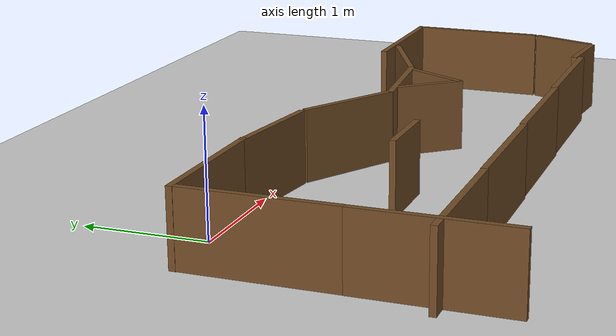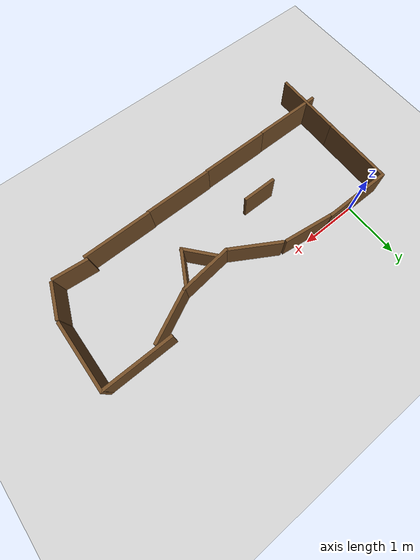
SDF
<?xml version="1.0" ?>
<sdf version='1.7'>
  <world name='default'>
    <gravity>0 0 -9.8</gravity>
    <magnetic_field>6e-06 2.3e-05 -4.2e-05</magnetic_field>
    <atmosphere type='adiabatic'/>
    <physics type='ode'>
      <max_step_size>0.001</max_step_size>
      <real_time_factor>1</real_time_factor>
      <real_time_update_rate>1000</real_time_update_rate>
    </physics>
    <scene>
      <ambient>0.4 0.4 0.4 1</ambient>
      <background>0.7 0.7 0.7 1</background>
      <shadows>true</shadows>
    </scene>
    <audio>
      <device>default</device>
    </audio>
    <wind/>
    <spherical_coordinates>
      <surface_model>EARTH_WGS84</surface_model>
      <latitude_deg>0</latitude_deg>
      <longitude_deg>0</longitude_deg>
      <elevation>0</elevation>
      <heading_deg>0</heading_deg>
    </spherical_coordinates>
    <gui fullscreen='false'>
      <camera name='user_camera'>
        <pose>5 -5 2 0 0.275643 2.35619</pose>
        <view_controller>orbit</view_controller>
        <projection_type>perspective</projection_type>
      </camera>
    </gui>
    <model name='ground_plane'>
      <static>true</static>
      <link name='link'>
        <collision name='collision'>
          <geometry>
            <plane>
              <normal>0 0 1</normal>
              <size>100 100</size>
            </plane>
          </geometry>
          <surface>
            <contact>
              <collide_bitmask>65535</collide_bitmask>
              <ode/>
            </contact>
            <friction>
              <ode>
                <mu>100</mu>
                <mu2>50</mu2>
              </ode>
              <torsional>
                <ode/>
              </torsional>
            </friction>
            <bounce/>
          </surface>
          <max_contacts>10</max_contacts>
        </collision>
        <visual name='visual'>
          <cast_shadows>false</cast_shadows>
          <geometry>
            <plane>
              <normal>0 0 1</normal>
              <size>100 100</size>
            </plane>
          </geometry>
          <material>
            <script>
              <uri>file://media/materials/scripts/gazebo.material</uri>
              <name>Gazebo/Grey</name>
            </script>
          </material>
        </visual>
        <self_collide>false</self_collide>
        <enable_wind>false</enable_wind>
        <kinematic>false</kinematic>
        <pose>0 0 0 0 -0 0</pose>
        <inertial>
          <pose>0 0 0 0 -0 0</pose>
          <mass>1</mass>
          <inertia>
            <ixx>1</ixx>
            <ixy>0</ixy>
            <ixz>0</ixz>
            <iyy>1</iyy>
            <iyz>0</iyz>
            <izz>1</izz>
          </inertia>
        </inertial>
      </link>
      <pose>0 0 0 0 -0 0</pose>
      <self_collide>false</self_collide>
    </model>
    <model name='wall120cm'>
      <static>true</static>
      <link name='link'>
        <collision name='collision'>
          <geometry>
            <box>
              <size>1.2 0.05 0.6</size>
            </box>
          </geometry>
          <max_contacts>10</max_contacts>
          <surface>
            <contact>
              <ode/>
            </contact>
            <bounce/>
            <friction>
              <torsional>
                <ode/>
              </torsional>
              <ode/>
            </friction>
          </surface>
        </collision>
        <visual name='visual'>
          <geometry>
            <box>
              <size>1.2 0.05 0.6</size>
            </box>
          </geometry>
          <material>
            <ambient>0.45 0.3 0.15 1</ambient>
            <diffuse>0.45 0.3 0.15 1</diffuse>
            <specular>0.05 0.05 0.05 1</specular>
          </material>
        </visual>
        <self_collide>false</self_collide>
        <enable_wind>false</enable_wind>
        <kinematic>false</kinematic>
        <pose>0 0 0 0 -0 0</pose>
        <inertial>
          <pose>0 0 0 0 -0 0</pose>
          <mass>1</mass>
          <inertia>
            <ixx>1</ixx>
            <ixy>0</ixy>
            <ixz>0</ixz>
            <iyy>1</iyy>
            <iyz>0</iyz>
            <izz>1</izz>
          </inertia>
        </inertial>
      </link>
      <pose>0.025868 -0.005277 0.3 0 -0 0</pose>
      <self_collide>false</self_collide>
    </model>
    <model name='wall120cm_0'>
      <static>true</static>
      <link name='link'>
        <collision name='collision'>
          <geometry>
            <box>
              <size>1.2 0.05 0.6</size>
            </box>
          </geometry>
          <max_contacts>10</max_contacts>
          <surface>
            <contact>
              <ode/>
            </contact>
            <bounce/>
            <friction>
              <torsional>
                <ode/>
              </torsional>
              <ode/>
            </friction>
          </surface>
        </collision>
        <visual name='visual'>
          <geometry>
            <box>
              <size>1.2 0.05 0.6</size>
            </box>
          </geometry>
          <material>
            <ambient>0.45 0.3 0.15 1</ambient>
            <diffuse>0.45 0.3 0.15 1</diffuse>
            <specular>0.05 0.05 0.05 1</specular>
          </material>
        </visual>
        <self_collide>false</self_collide>
        <enable_wind>false</enable_wind>
        <kinematic>false</kinematic>
        <pose>0 0 0 0 -0 0</pose>
        <inertial>
          <pose>0 0 0 0 -0 0</pose>
          <mass>1</mass>
          <inertia>
            <ixx>1</ixx>
            <ixy>0</ixy>
            <ixz>0</ixz>
            <iyy>1</iyy>
            <iyz>0</iyz>
            <izz>1</izz>
          </inertia>
        </inertial>
      </link>
      <pose>-0.54837 -0.623096 0.3 0 0 -1.57402</pose>
      <self_collide>false</self_collide>
    </model>
    <model name='wall90cm'>
      <static>true</static>
      <pose>1.01848 -0.064701 0.3 0 0 -0.130317</pose>
      <link name='link'>
        <collision name='collision'>
          <geometry>
            <box>
              <size>0.9 0.05 0.6</size>
            </box>
          </geometry>
          <max_contacts>10</max_contacts>
          <surface>
            <contact>
              <ode/>
            </contact>
            <bounce/>
            <friction>
              <torsional>
                <ode/>
              </torsional>
              <ode/>
            </friction>
          </surface>
        </collision>
        <visual name='visual'>
          <geometry>
            <box>
              <size>0.9 0.05 0.6</size>
            </box>
          </geometry>
          <material>
            <ambient>0.45 0.3 0.15 1</ambient>
            <diffuse>0.45 0.3 0.15 1</diffuse>
            <specular>0.05 0.05 0.05 1</specular>
          </material>
        </visual>
        <self_collide>false</self_collide>
        <enable_wind>false</enable_wind>
        <kinematic>false</kinematic>
        <pose>0 0 0 0 -0 0</pose>
        <inertial>
          <pose>0 0 0 0 -0 0</pose>
          <mass>1</mass>
          <inertia>
            <ixx>1</ixx>
            <ixy>0</ixy>
            <ixz>0</ixz>
            <iyy>1</iyy>
            <iyz>0</iyz>
            <izz>1</izz>
          </inertia>
        </inertial>
      </link>
      <self_collide>false</self_collide>
    </model>
    <model name='wall90cm_0'>
      <static>true</static>
      <pose>1.88 -0.36 0.3 0 0 -0.53</pose>
      <link name='link'>
        <collision name='collision'>
          <geometry>
            <box>
              <size>0.9 0.05 0.6</size>
            </box>
          </geometry>
          <max_contacts>10</max_contacts>
          <surface>
            <contact>
              <ode/>
            </contact>
            <bounce/>
            <friction>
              <torsional>
                <ode/>
              </torsional>
              <ode/>
            </friction>
          </surface>
        </collision>
        <visual name='visual'>
          <geometry>
            <box>
              <size>0.9 0.05 0.6</size>
            </box>
          </geometry>
          <material>
            <ambient>0.45 0.3 0.15 1</ambient>
            <diffuse>0.45 0.3 0.15 1</diffuse>
            <specular>0.05 0.05 0.05 1</specular>
          </material>
        </visual>
        <self_collide>false</self_collide>
        <enable_wind>false</enable_wind>
        <kinematic>false</kinematic>
        <pose>0 0 0 0 -0 0</pose>
        <inertial>
          <pose>0 0 0 0 -0 0</pose>
          <mass>1</mass>
          <inertia>
            <ixx>1</ixx>
            <ixy>0</ixy>
            <ixz>0</ixz>
            <iyy>1</iyy>
            <iyz>0</iyz>
            <izz>1</izz>
          </inertia>
        </inertial>
      </link>
      <self_collide>false</self_collide>
    </model>
    <model name='wall90cm_0_1'>
      <static>true</static>
      <pose>2.70059 -0.54056 0.3 0 -0 0.108521</pose>
      <link name='link'>
        <collision name='collision'>
          <geometry>
            <box>
              <size>0.9 0.05 0.6</size>
            </box>
          </geometry>
          <max_contacts>10</max_contacts>
          <surface>
            <contact>
              <ode/>
            </contact>
            <bounce/>
            <friction>
              <torsional>
                <ode/>
              </torsional>
              <ode/>
            </friction>
          </surface>
        </collision>
        <visual name='visual'>
          <geometry>
            <box>
              <size>0.9 0.05 0.6</size>
            </box>
          </geometry>
          <material>
            <ambient>0.45 0.3 0.15 1</ambient>
            <diffuse>0.45 0.3 0.15 1</diffuse>
            <specular>0.05 0.05 0.05 1</specular>
          </material>
        </visual>
        <self_collide>false</self_collide>
        <enable_wind>false</enable_wind>
        <kinematic>false</kinematic>
        <pose>0 0 0 0 -0 0</pose>
        <inertial>
          <pose>0 0 0 0 -0 0</pose>
          <mass>1</mass>
          <inertia>
            <ixx>1</ixx>
            <ixy>0</ixy>
            <ixz>0</ixz>
            <iyy>1</iyy>
            <iyz>0</iyz>
            <izz>1</izz>
          </inertia>
        </inertial>
      </link>
      <self_collide>false</self_collide>
    </model>
    <model name='wall90cm_0_1_1'>
      <static>true</static>
      <pose>3.51692 -0.303152 0.3 0 -0 0.453864</pose>
      <link name='link'>
        <collision name='collision'>
          <geometry>
            <box>
              <size>0.9 0.05 0.6</size>
            </box>
          </geometry>
          <max_contacts>10</max_contacts>
          <surface>
            <contact>
              <ode/>
            </contact>
            <bounce/>
            <friction>
              <torsional>
                <ode/>
              </torsional>
              <ode/>
            </friction>
          </surface>
        </collision>
        <visual name='visual'>
          <geometry>
            <box>
              <size>0.9 0.05 0.6</size>
            </box>
          </geometry>
          <material>
            <ambient>0.45 0.3 0.15 1</ambient>
            <diffuse>0.45 0.3 0.15 1</diffuse>
            <specular>0.05 0.05 0.05 1</specular>
          </material>
        </visual>
        <self_collide>false</self_collide>
        <enable_wind>false</enable_wind>
        <kinematic>false</kinematic>
        <pose>0 0 0 0 -0 0</pose>
        <inertial>
          <pose>0 0 0 0 -0 0</pose>
          <mass>1</mass>
          <inertia>
            <ixx>1</ixx>
            <ixy>0</ixy>
            <ixz>0</ixz>
            <iyy>1</iyy>
            <iyz>0</iyz>
            <izz>1</izz>
          </inertia>
        </inertial>
      </link>
      <self_collide>false</self_collide>
    </model>
    <model name='wall120cm_1'>
      <static>true</static>
      <link name='link'>
        <collision name='collision'>
          <geometry>
            <box>
              <size>1.2 0.05 0.6</size>
            </box>
          </geometry>
          <max_contacts>10</max_contacts>
          <surface>
            <contact>
              <ode/>
            </contact>
            <bounce/>
            <friction>
              <torsional>
                <ode/>
              </torsional>
              <ode/>
            </friction>
          </surface>
        </collision>
        <visual name='visual'>
          <geometry>
            <box>
              <size>1.2 0.05 0.6</size>
            </box>
          </geometry>
          <material>
            <ambient>0.45 0.3 0.15 1</ambient>
            <diffuse>0.45 0.3 0.15 1</diffuse>
            <specular>0.05 0.05 0.05 1</specular>
          </material>
        </visual>
        <self_collide>false</self_collide>
        <enable_wind>false</enable_wind>
        <kinematic>false</kinematic>
        <pose>0 0 0 0 -0 0</pose>
        <inertial>
          <pose>0 0 0 0 -0 0</pose>
          <mass>1</mass>
          <inertia>
            <ixx>1</ixx>
            <ixy>0</ixy>
            <ixz>0</ixz>
            <iyy>1</iyy>
            <iyz>0</iyz>
            <izz>1</izz>
          </inertia>
        </inertial>
      </link>
      <pose>4.24863 -0.05808 0.3 0 -0 0</pose>
      <self_collide>false</self_collide>
    </model>
    <model name='wall120cm_0_1'>
      <static>true</static>
      <link name='link'>
        <collision name='collision'>
          <geometry>
            <box>
              <size>1.2 0.05 0.6</size>
            </box>
          </geometry>
          <max_contacts>10</max_contacts>
          <surface>
            <contact>
              <ode/>
            </contact>
            <bounce/>
            <friction>
              <torsional>
                <ode/>
              </torsional>
              <ode/>
            </friction>
          </surface>
        </collision>
        <visual name='visual'>
          <geometry>
            <box>
              <size>1.2 0.05 0.6</size>
            </box>
          </geometry>
          <material>
            <ambient>0.45 0.3 0.15 1</ambient>
            <diffuse>0.45 0.3 0.15 1</diffuse>
            <specular>0.05 0.05 0.05 1</specular>
          </material>
        </visual>
        <self_collide>false</self_collide>
        <enable_wind>false</enable_wind>
        <kinematic>false</kinematic>
        <pose>0 0 0 0 -0 0</pose>
        <inertial>
          <pose>0 0 0 0 -0 0</pose>
          <mass>1</mass>
          <inertia>
            <ixx>1</ixx>
            <ixy>0</ixy>
            <ixz>0</ixz>
            <iyy>1</iyy>
            <iyz>0</iyz>
            <izz>1</izz>
          </inertia>
        </inertial>
      </link>
      <pose>4.82576 -0.63114 0.3 0 0 -1.57402</pose>
      <self_collide>false</self_collide>
    </model>
    <model name='wall60cm_1'>
      <static>true</static>
      <pose>4.71252 -1.53217 0.3 0 -0 1.20175</pose>
      <link name='link'>
        <collision name='collision'>
          <geometry>
            <box>
              <size>0.6 0.05 0.6</size>
            </box>
          </geometry>
          <max_contacts>10</max_contacts>
          <surface>
            <contact>
              <ode/>
            </contact>
            <bounce/>
            <friction>
              <torsional>
                <ode/>
              </torsional>
              <ode/>
            </friction>
          </surface>
        </collision>
        <visual name='visual'>
          <geometry>
            <box>
              <size>0.6 0.05 0.6</size>
            </box>
          </geometry>
          <material>
            <ambient>0.45 0.3 0.15 1</ambient>
            <diffuse>0.45 0.3 0.15 1</diffuse>
            <specular>0.05 0.05 0.05 1</specular>
          </material>
        </visual>
        <self_collide>false</self_collide>
        <enable_wind>false</enable_wind>
        <kinematic>false</kinematic>
      </link>
      <self_collide>false</self_collide>
    </model>
    <model name='wall60cm_1_1'>
      <static>true</static>
      <pose>4.29322 -1.79983 0.3 0 0 -0.094563</pose>
      <link name='link'>
        <collision name='collision'>
          <geometry>
            <box>
              <size>0.6 0.05 0.6</size>
            </box>
          </geometry>
          <max_contacts>10</max_contacts>
          <surface>
            <contact>
              <ode/>
            </contact>
            <bounce/>
            <friction>
              <torsional>
                <ode/>
              </torsional>
              <ode/>
            </friction>
          </surface>
        </collision>
        <visual name='visual'>
          <geometry>
            <box>
              <size>0.6 0.05 0.6</size>
            </box>
          </geometry>
          <material>
            <ambient>0.45 0.3 0.15 1</ambient>
            <diffuse>0.45 0.3 0.15 1</diffuse>
            <specular>0.05 0.05 0.05 1</specular>
          </material>
        </visual>
        <self_collide>false</self_collide>
        <enable_wind>false</enable_wind>
        <kinematic>false</kinematic>
      </link>
      <self_collide>false</self_collide>
    </model>
    <model name='wall120cm_2'>
      <static>true</static>
      <link name='link'>
        <collision name='collision'>
          <geometry>
            <box>
              <size>1.2 0.05 0.6</size>
            </box>
          </geometry>
          <max_contacts>10</max_contacts>
          <surface>
            <contact>
              <ode/>
            </contact>
            <bounce/>
            <friction>
              <torsional>
                <ode/>
              </torsional>
              <ode/>
            </friction>
          </surface>
        </collision>
        <visual name='visual'>
          <geometry>
            <box>
              <size>1.2 0.05 0.6</size>
            </box>
          </geometry>
          <material>
            <ambient>0.45 0.3 0.15 1</ambient>
            <diffuse>0.45 0.3 0.15 1</diffuse>
            <specular>0.05 0.05 0.05 1</specular>
          </material>
        </visual>
        <self_collide>false</self_collide>
        <enable_wind>false</enable_wind>
        <kinematic>false</kinematic>
        <pose>0 0 0 0 -0 0</pose>
        <inertial>
          <pose>0 0 0 0 -0 0</pose>
          <mass>1</mass>
          <inertia>
            <ixx>1</ixx>
            <ixy>0</ixy>
            <ixz>0</ixz>
            <iyy>1</iyy>
            <iyz>0</iyz>
            <izz>1</izz>
          </inertia>
        </inertial>
      </link>
      <pose>3.43435 -1.83432 0.3 0 -0 0</pose>
      <self_collide>false</self_collide>
    </model>
    <model name='wall120cm_2_1'>
      <static>true</static>
      <link name='link'>
        <collision name='collision'>
          <geometry>
            <box>
              <size>1.2 0.05 0.6</size>
            </box>
          </geometry>
          <max_contacts>10</max_contacts>
          <surface>
            <contact>
              <ode/>
            </contact>
            <bounce/>
            <friction>
              <torsional>
                <ode/>
              </torsional>
              <ode/>
            </friction>
          </surface>
        </collision>
        <visual name='visual'>
          <geometry>
            <box>
              <size>1.2 0.05 0.6</size>
            </box>
          </geometry>
          <material>
            <ambient>0.45 0.3 0.15 1</ambient>
            <diffuse>0.45 0.3 0.15 1</diffuse>
            <specular>0.05 0.05 0.05 1</specular>
          </material>
        </visual>
        <self_collide>false</self_collide>
        <enable_wind>false</enable_wind>
        <kinematic>false</kinematic>
        <pose>0 0 0 0 -0 0</pose>
        <inertial>
          <pose>0 0 0 0 -0 0</pose>
          <mass>1</mass>
          <inertia>
            <ixx>1</ixx>
            <ixy>0</ixy>
            <ixz>0</ixz>
            <iyy>1</iyy>
            <iyz>0</iyz>
            <izz>1</izz>
          </inertia>
        </inertial>
      </link>
      <pose>2.26196 -1.84473 0.3 0 -0 0</pose>
      <self_collide>false</self_collide>
    </model>
    <model name='wall120cm_2_1_1'>
      <static>true</static>
      <link name='link'>
        <collision name='collision'>
          <geometry>
            <box>
              <size>1.2 0.05 0.6</size>
            </box>
          </geometry>
          <max_contacts>10</max_contacts>
          <surface>
            <contact>
              <ode/>
            </contact>
            <bounce/>
            <friction>
              <torsional>
                <ode/>
              </torsional>
              <ode/>
            </friction>
          </surface>
        </collision>
        <visual name='visual'>
          <geometry>
            <box>
              <size>1.2 0.05 0.6</size>
            </box>
          </geometry>
          <material>
            <ambient>0.45 0.3 0.15 1</ambient>
            <diffuse>0.45 0.3 0.15 1</diffuse>
            <specular>0.05 0.05 0.05 1</specular>
          </material>
        </visual>
        <self_collide>false</self_collide>
        <enable_wind>false</enable_wind>
        <kinematic>false</kinematic>
        <pose>0 0 0 0 -0 0</pose>
        <inertial>
          <pose>0 0 0 0 -0 0</pose>
          <mass>1</mass>
          <inertia>
            <ixx>1</ixx>
            <ixy>0</ixy>
            <ixz>0</ixz>
            <iyy>1</iyy>
            <iyz>0</iyz>
            <izz>1</izz>
          </inertia>
        </inertial>
      </link>
      <pose>1.07996 -1.85447 0.3 0 -0 0</pose>
      <self_collide>false</self_collide>
    </model>
    <model name='wall120cm_2_1_1_1'>
      <static>true</static>
      <link name='link'>
        <collision name='collision'>
          <geometry>
            <box>
              <size>1.2 0.05 0.6</size>
            </box>
          </geometry>
          <max_contacts>10</max_contacts>
          <surface>
            <contact>
              <ode/>
            </contact>
            <bounce/>
            <friction>
              <torsional>
                <ode/>
              </torsional>
              <ode/>
            </friction>
          </surface>
        </collision>
        <visual name='visual'>
          <geometry>
            <box>
              <size>1.2 0.05 0.6</size>
            </box>
          </geometry>
          <material>
            <ambient>0.45 0.3 0.15 1</ambient>
            <diffuse>0.45 0.3 0.15 1</diffuse>
            <specular>0.05 0.05 0.05 1</specular>
          </material>
        </visual>
        <self_collide>false</self_collide>
        <enable_wind>false</enable_wind>
        <kinematic>false</kinematic>
        <pose>0 0 0 0 -0 0</pose>
        <inertial>
          <pose>0 0 0 0 -0 0</pose>
          <mass>1</mass>
          <inertia>
            <ixx>1</ixx>
            <ixy>0</ixy>
            <ixz>0</ixz>
            <iyy>1</iyy>
            <iyz>0</iyz>
            <izz>1</izz>
          </inertia>
        </inertial>
      </link>
      <pose>-0.112446 -1.86018 0.3 0 -0 0</pose>
      <self_collide>false</self_collide>
    </model>
    <model name='wall120cm_0_2'>
      <static>true</static>
      <link name='link'>
        <collision name='collision'>
          <geometry>
            <box>
              <size>1.2 0.05 0.6</size>
            </box>
          </geometry>
          <max_contacts>10</max_contacts>
          <surface>
            <contact>
              <ode/>
            </contact>
            <bounce/>
            <friction>
              <torsional>
                <ode/>
              </torsional>
              <ode/>
            </friction>
          </surface>
        </collision>
        <visual name='visual'>
          <geometry>
            <box>
              <size>1.2 0.05 0.6</size>
            </box>
          </geometry>
          <material>
            <ambient>0.45 0.3 0.15 1</ambient>
            <diffuse>0.45 0.3 0.15 1</diffuse>
            <specular>0.05 0.05 0.05 1</specular>
          </material>
        </visual>
        <self_collide>false</self_collide>
        <enable_wind>false</enable_wind>
        <kinematic>false</kinematic>
        <pose>0 0 0 0 -0 0</pose>
        <inertial>
          <pose>0 0 0 0 -0 0</pose>
          <mass>1</mass>
          <inertia>
            <ixx>1</ixx>
            <ixy>0</ixy>
            <ixz>0</ixz>
            <iyy>1</iyy>
            <iyz>0</iyz>
            <izz>1</izz>
          </inertia>
        </inertial>
      </link>
      <pose>-0.554464 -1.81929 0.3 0 0 -1.57402</pose>
      <self_collide>false</self_collide>
    </model>
    <model name='wall60cm_2'>
      <static>true</static>
      <pose>1.20645 -1.05641 0.3 0 -0 0</pose>
      <link name='link'>
        <collision name='collision'>
          <geometry>
            <box>
              <size>0.6 0.05 0.6</size>
            </box>
          </geometry>
          <max_contacts>10</max_contacts>
          <surface>
            <contact>
              <ode/>
            </contact>
            <bounce/>
            <friction>
              <torsional>
                <ode/>
              </torsional>
              <ode/>
            </friction>
          </surface>
        </collision>
        <visual name='visual'>
          <geometry>
            <box>
              <size>0.6 0.05 0.6</size>
            </box>
          </geometry>
          <material>
            <ambient>0.45 0.3 0.15 1</ambient>
            <diffuse>0.45 0.3 0.15 1</diffuse>
            <specular>0.05 0.05 0.05 1</specular>
          </material>
        </visual>
        <self_collide>false</self_collide>
        <enable_wind>false</enable_wind>
        <kinematic>false</kinematic>
      </link>
      <self_collide>false</self_collide>
    </model>
    <model name='wall60cm_2_1'>
      <static>true</static>
      <pose>2.94292 -0.762582 0.3 0 0 -2.07825</pose>
      <link name='link'>
        <collision name='collision'>
          <geometry>
            <box>
              <size>0.6 0.05 0.6</size>
            </box>
          </geometry>
          <max_contacts>10</max_contacts>
          <surface>
            <contact>
              <ode/>
            </contact>
            <bounce/>
            <friction>
              <torsional>
                <ode/>
              </torsional>
              <ode/>
            </friction>
          </surface>
        </collision>
        <visual name='visual'>
          <geometry>
            <box>
              <size>0.6 0.05 0.6</size>
            </box>
          </geometry>
          <material>
            <ambient>0.45 0.3 0.15 1</ambient>
            <diffuse>0.45 0.3 0.15 1</diffuse>
            <specular>0.05 0.05 0.05 1</specular>
          </material>
        </visual>
        <self_collide>false</self_collide>
        <enable_wind>false</enable_wind>
        <kinematic>false</kinematic>
      </link>
      <self_collide>false</self_collide>
    </model>
    <model name='wall60cm_2_1_1'>
      <static>true</static>
      <pose>2.61872 -0.814321 0.3 0 -0 2.27853</pose>
      <link name='link'>
        <collision name='collision'>
          <geometry>
            <box>
              <size>0.6 0.05 0.6</size>
            </box>
          </geometry>
          <max_contacts>10</max_contacts>
          <surface>
            <contact>
              <ode/>
            </contact>
            <bounce/>
            <friction>
              <torsional>
                <ode/>
              </torsional>
              <ode/>
            </friction>
          </surface>
        </collision>
        <visual name='visual'>
          <geometry>
            <box>
              <size>0.6 0.05 0.6</size>
            </box>
          </geometry>
          <material>
            <ambient>0.45 0.3 0.15 1</ambient>
            <diffuse>0.45 0.3 0.15 1</diffuse>
            <specular>0.05 0.05 0.05 1</specular>
          </material>
        </visual>
        <self_collide>false</self_collide>
        <enable_wind>false</enable_wind>
        <kinematic>false</kinematic>
      </link>
      <self_collide>false</self_collide>
    </model>
    <light name='sun' type='directional'>
      <pose>0 0 10 0 -0 0</pose>
      <cast_shadows>true</cast_shadows>
      <intensity>1</intensity>
      <direction>-0.5 0.1 -0.9</direction>
      <diffuse>0.8 0.8 0.8 1</diffuse>
      <specular>0.2 0.2 0.2 1</specular>
      <attenuation>
        <range>1000</range>
        <linear>0.01</linear>
        <constant>0.90000000000000002</constant>
        <quadratic>0.001</quadratic>
      </attenuation>
      <spot>
        <inner_angle>0</inner_angle>
        <outer_angle>0</outer_angle>
        <falloff>0</falloff>
      </spot>
    </light>
  </world>
</sdf>
